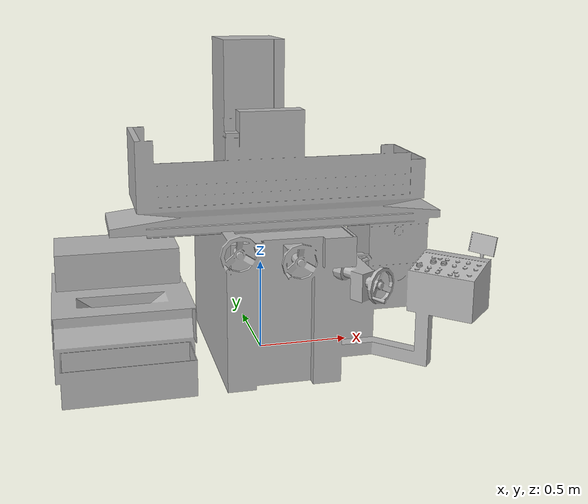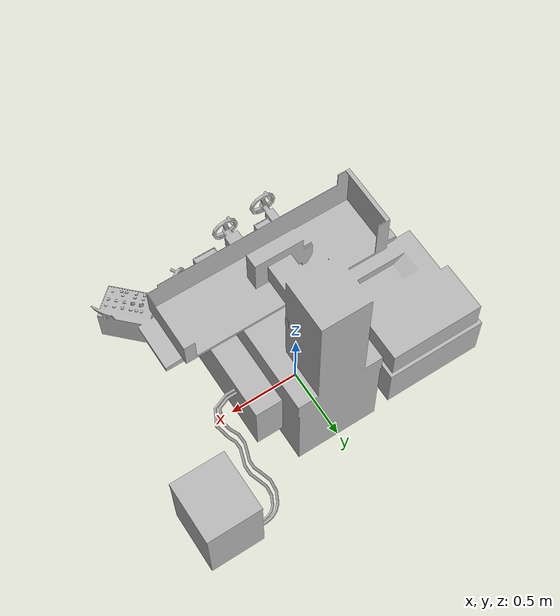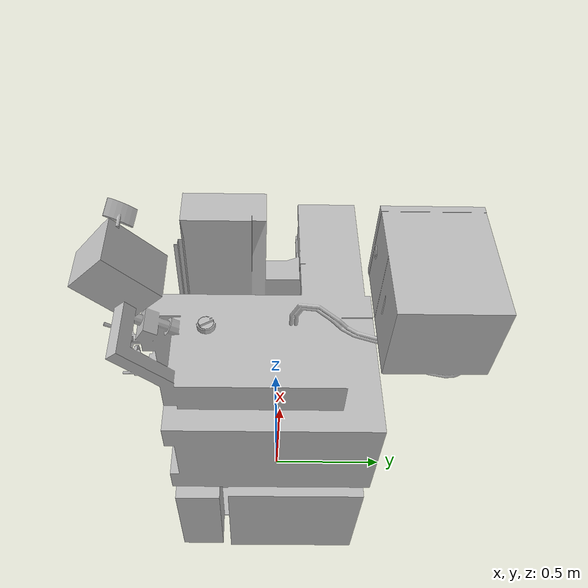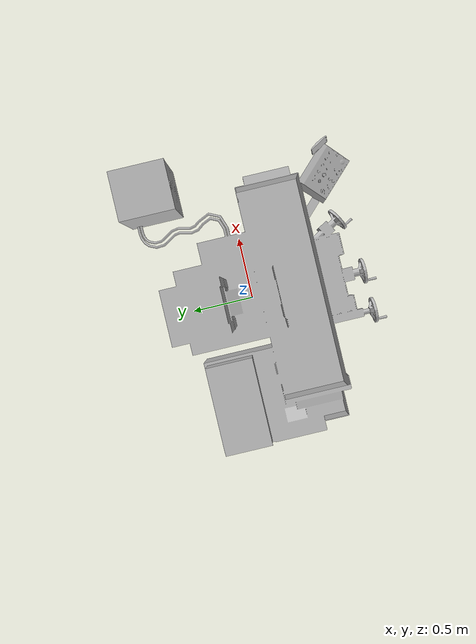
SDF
<?xml version="1.0" ?>
<sdf version="1.5">
  <model name="Retifica">
    <static>true</static>
    <link name="link">
      <collision name="collision">
        <geometry>
            <mesh>
                <uri>model://retifica/meshes/retifica.stl</uri>
                <scale>1 1 1</scale>
            </mesh>
        </geometry>
        <surface>stf format</surface>
      </collision>
      <visual name="visual">
        <geometry>
          <mesh>
            <uri>model://retifica/meshes/retifica.stl</uri>
            <scale>1 1 1</scale>
          </mesh>
        </geometry>
      </visual>
    </link>
    <gazebo reference="link">
      <material>Gazebo/White</material>
    </gazebo>
  </model>
</sdf>
